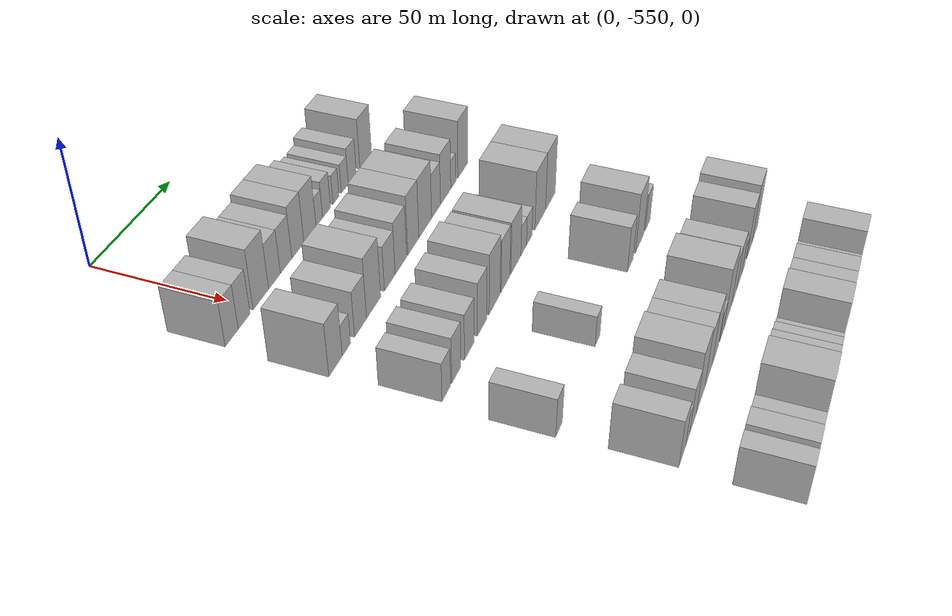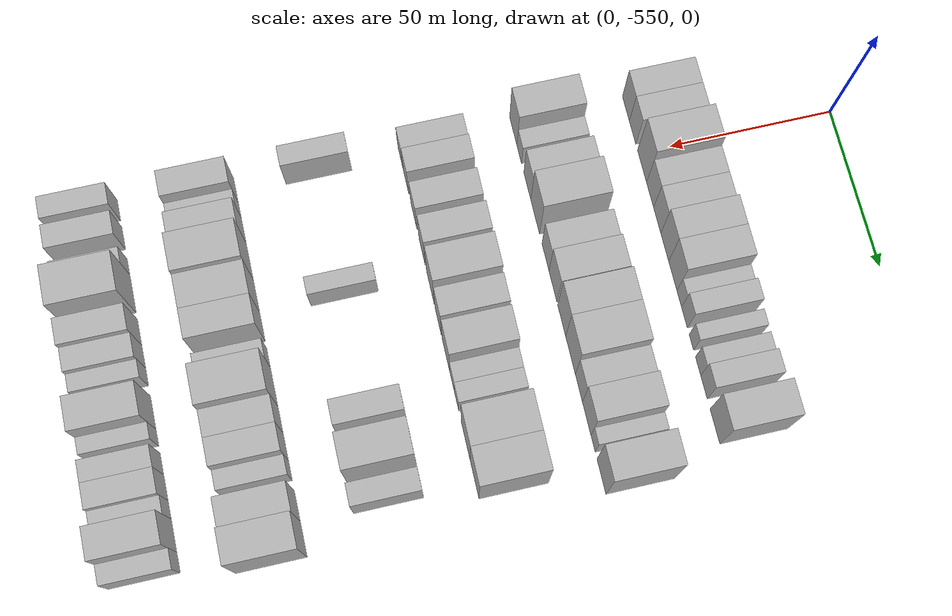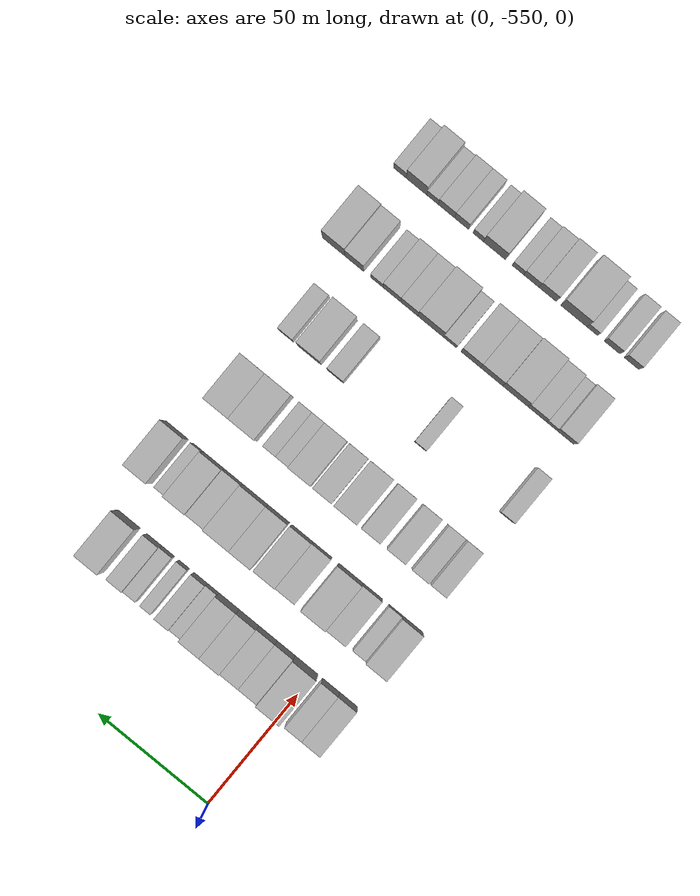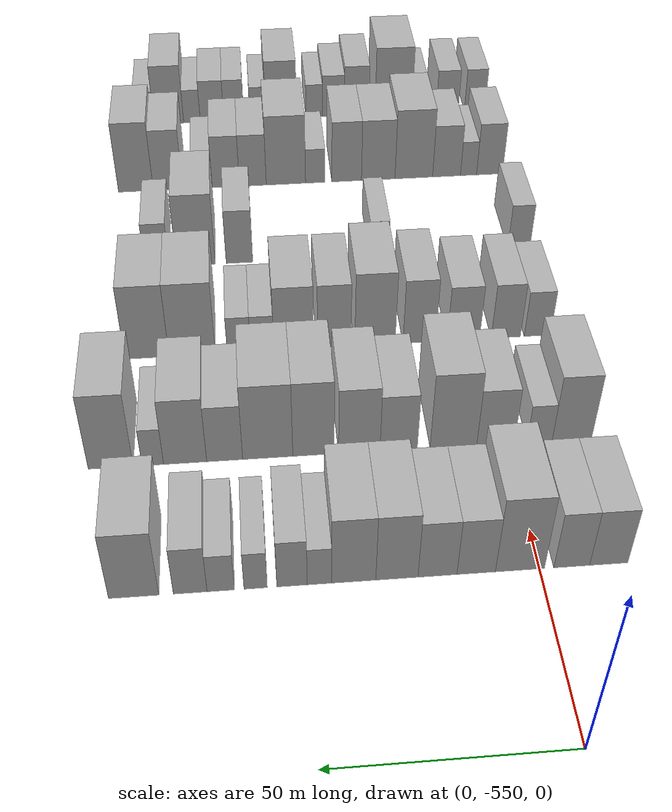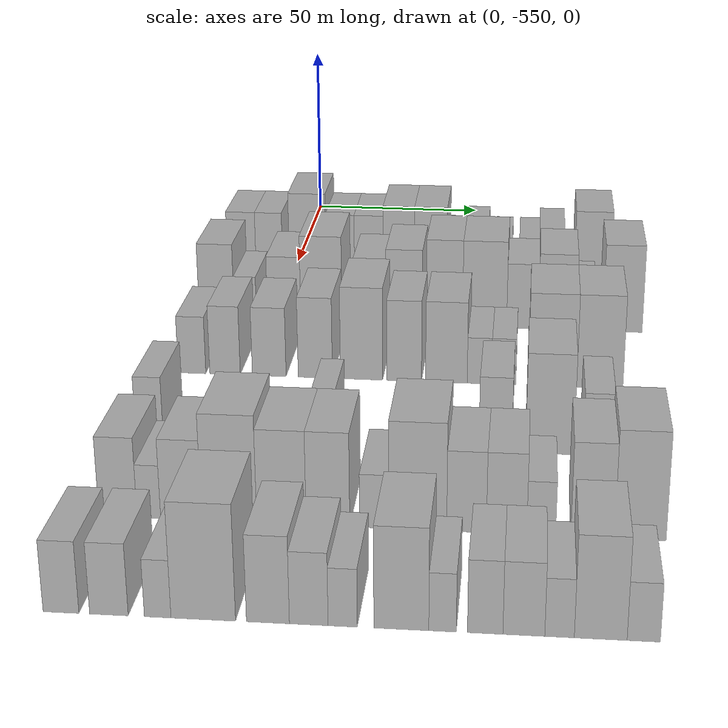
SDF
<sdf version="1.6">
 <world name="default">
  <model name="building_1">
   <static>1</static>
   <pose>50.0000 -564.8627 0 0.000000 0.000000 0.000000</pose>
   <link name="link">
    <pose>0 0 9.00 0 0 0</pose>
    <collision name="collision"><geometry><box><size>20.0000 8.2747 18.0000</size></box></geometry></collision>
    <visual name="visual">
     <cast_shadows>0</cast_shadows>
     <geometry><box><size>20.0000 8.2747 18.0000</size></box></geometry>
     <material>
      <script>
       <uri>model://HANNAS_wall/materials/scripts</uri>
       <uri>model://HANNAS_wall/materials/textures</uri>
       <name>vrc/HANNAS_wall</name>
      </script>
     </material>
    </visual>
   </link>
  </model>
  <model name="building_2">
   <static>1</static>
   <pose>50.0000 -556.8745 0 0.000000 0.000000 0.000000</pose>
   <link name="link">
    <pose>0 0 9.00 0 0 0</pose>
    <collision name="collision"><geometry><box><size>20.0000 7.7017 18.0000</size></box></geometry></collision>
    <visual name="visual">
     <cast_shadows>0</cast_shadows>
     <geometry><box><size>20.0000 7.7017 18.0000</size></box></geometry>
     <material>
      <script>
       <uri>model://HANNAS_wall/materials/scripts</uri>
       <uri>model://HANNAS_wall/materials/textures</uri>
       <name>vrc/HANNAS_wall</name>
      </script>
     </material>
    </visual>
   </link>
  </model>
  <model name="building_3">
   <static>1</static>
   <pose>50.0000 -545.7599 0 0.000000 0.000000 0.000000</pose>
   <link name="link">
    <pose>0 0 12.00 0 0 0</pose>
    <collision name="collision"><geometry><box><size>20.0000 10.5275 24.0000</size></box></geometry></collision>
    <visual name="visual">
     <cast_shadows>0</cast_shadows>
     <geometry><box><size>20.0000 10.5275 24.0000</size></box></geometry>
     <material>
      <script>
       <uri>model://HANNAS_wall/materials/scripts</uri>
       <uri>model://HANNAS_wall/materials/textures</uri>
       <name>vrc/HANNAS_wall</name>
      </script>
     </material>
    </visual>
   </link>
  </model>
  <model name="building_4">
   <static>1</static>
   <pose>50.0000 -536.3912 0 0.000000 0.000000 0.000000</pose>
   <link name="link">
    <pose>0 0 9.00 0 0 0</pose>
    <collision name="collision"><geometry><box><size>20.0000 8.2100 18.0000</size></box></geometry></collision>
    <visual name="visual">
     <cast_shadows>0</cast_shadows>
     <geometry><box><size>20.0000 8.2100 18.0000</size></box></geometry>
     <material>
      <script>
       <uri>model://HANNAS_wall/materials/scripts</uri>
       <uri>model://HANNAS_wall/materials/textures</uri>
       <name>vrc/HANNAS_wall</name>
      </script>
     </material>
    </visual>
   </link>
  </model>
  <model name="building_5">
   <static>1</static>
   <pose>50.0000 -528.1574 0 0.000000 0.000000 0.000000</pose>
   <link name="link">
    <pose>0 0 9.00 0 0 0</pose>
    <collision name="collision"><geometry><box><size>20.0000 8.2576 18.0000</size></box></geometry></collision>
    <visual name="visual">
     <cast_shadows>0</cast_shadows>
     <geometry><box><size>20.0000 8.2576 18.0000</size></box></geometry>
     <material>
      <script>
       <uri>model://HANNAS_wall/materials/scripts</uri>
       <uri>model://HANNAS_wall/materials/textures</uri>
       <name>vrc/HANNAS_wall</name>
      </script>
     </material>
    </visual>
   </link>
  </model>
  <model name="building_6">
   <static>1</static>
   <pose>50.0000 -519.5687 0 0.000000 0.000000 0.000000</pose>
   <link name="link">
    <pose>0 0 10.50 0 0 0</pose>
    <collision name="collision"><geometry><box><size>20.0000 8.9199 21.0000</size></box></geometry></collision>
    <visual name="visual">
     <cast_shadows>0</cast_shadows>
     <geometry><box><size>20.0000 8.9199 21.0000</size></box></geometry>
     <material>
      <script>
       <uri>model://HANNAS_wall/materials/scripts</uri>
       <uri>model://HANNAS_wall/materials/textures</uri>
       <name>vrc/HANNAS_wall</name>
      </script>
     </material>
    </visual>
   </link>
  </model>
  <model name="building_7">
   <static>1</static>
   <pose>50.0000 -510.4718 0 0.000000 0.000000 0.000000</pose>
   <link name="link">
    <pose>0 0 10.50 0 0 0</pose>
    <collision name="collision"><geometry><box><size>20.0000 9.2739 21.0000</size></box></geometry></collision>
    <visual name="visual">
     <cast_shadows>0</cast_shadows>
     <geometry><box><size>20.0000 9.2739 21.0000</size></box></geometry>
     <material>
      <script>
       <uri>model://HANNAS_wall/materials/scripts</uri>
       <uri>model://HANNAS_wall/materials/textures</uri>
       <name>vrc/HANNAS_wall</name>
      </script>
     </material>
    </visual>
   </link>
  </model>
  <model name="building_8">
   <static>1</static>
   <pose>50.0000 -503.2630 0 0.000000 0.000000 0.000000</pose>
   <link name="link">
    <pose>0 0 6.00 0 0 0</pose>
    <collision name="collision"><geometry><box><size>20.0000 5.1437 12.0000</size></box></geometry></collision>
    <visual name="visual">
     <cast_shadows>0</cast_shadows>
     <geometry><box><size>20.0000 5.1437 12.0000</size></box></geometry>
     <material>
      <script>
       <uri>model://HANNAS_wall/materials/scripts</uri>
       <uri>model://HANNAS_wall/materials/textures</uri>
       <name>vrc/HANNAS_wall</name>
      </script>
     </material>
    </visual>
   </link>
  </model>
  <model name="building_9">
   <static>1</static>
   <pose>50.0000 -497.5153 0 0.000000 0.000000 0.000000</pose>
   <link name="link">
    <pose>0 0 7.50 0 0 0</pose>
    <collision name="collision"><geometry><box><size>20.0000 6.3517 15.0000</size></box></geometry></collision>
    <visual name="visual">
     <cast_shadows>0</cast_shadows>
     <geometry><box><size>20.0000 6.3517 15.0000</size></box></geometry>
     <material>
      <script>
       <uri>model://HANNAS_wall/materials/scripts</uri>
       <uri>model://HANNAS_wall/materials/textures</uri>
       <name>vrc/HANNAS_wall</name>
      </script>
     </material>
    </visual>
   </link>
  </model>
  <model name="building_10">
   <static>1</static>
   <pose>50.0000 -489.9165 0 0.000000 0.000000 0.000000</pose>
   <link name="link">
    <pose>0 0 6.00 0 0 0</pose>
    <collision name="collision"><geometry><box><size>20.0000 4.8460 12.0000</size></box></geometry></collision>
    <visual name="visual">
     <cast_shadows>0</cast_shadows>
     <geometry><box><size>20.0000 4.8460 12.0000</size></box></geometry>
     <material>
      <script>
       <uri>model://HANNAS_wall/materials/scripts</uri>
       <uri>model://HANNAS_wall/materials/textures</uri>
       <name>vrc/HANNAS_wall</name>
      </script>
     </material>
    </visual>
   </link>
  </model>
  <model name="building_11">
   <static>1</static>
   <pose>50.0000 -482.6522 0 0.000000 0.000000 0.000000</pose>
   <link name="link">
    <pose>0 0 6.00 0 0 0</pose>
    <collision name="collision"><geometry><box><size>20.0000 5.6825 12.0000</size></box></geometry></collision>
    <visual name="visual">
     <cast_shadows>0</cast_shadows>
     <geometry><box><size>20.0000 5.6825 12.0000</size></box></geometry>
     <material>
      <script>
       <uri>model://HANNAS_wall/materials/scripts</uri>
       <uri>model://HANNAS_wall/materials/textures</uri>
       <name>vrc/HANNAS_wall</name>
      </script>
     </material>
    </visual>
   </link>
  </model>
  <model name="building_12">
   <static>1</static>
   <pose>50.0000 -476.3167 0 0.000000 0.000000 0.000000</pose>
   <link name="link">
    <pose>0 0 7.50 0 0 0</pose>
    <collision name="collision"><geometry><box><size>20.0000 6.9886 15.0000</size></box></geometry></collision>
    <visual name="visual">
     <cast_shadows>0</cast_shadows>
     <geometry><box><size>20.0000 6.9886 15.0000</size></box></geometry>
     <material>
      <script>
       <uri>model://HANNAS_wall/materials/scripts</uri>
       <uri>model://HANNAS_wall/materials/textures</uri>
       <name>vrc/HANNAS_wall</name>
      </script>
     </material>
    </visual>
   </link>
  </model>
  <model name="building_13">
   <static>1</static>
   <pose>50.0000 -464.6438 0 0.000000 0.000000 0.000000</pose>
   <link name="link">
    <pose>0 0 10.50 0 0 0</pose>
    <collision name="collision"><geometry><box><size>20.0000 10.3572 21.0000</size></box></geometry></collision>
    <visual name="visual">
     <cast_shadows>0</cast_shadows>
     <geometry><box><size>20.0000 10.3572 21.0000</size></box></geometry>
     <material>
      <script>
       <uri>model://HANNAS_wall/materials/scripts</uri>
       <uri>model://HANNAS_wall/materials/textures</uri>
       <name>vrc/HANNAS_wall</name>
      </script>
     </material>
    </visual>
   </link>
  </model>
  <model name="building_127">
   <static>1</static>
   <pose>85.0000 -565.2826 0 0.000000 0.000000 0.000000</pose>
   <link name="link">
    <pose>0 0 10.50 0 0 0</pose>
    <collision name="collision"><geometry><box><size>20.0000 9.4348 21.0000</size></box></geometry></collision>
    <visual name="visual">
     <cast_shadows>0</cast_shadows>
     <geometry><box><size>20.0000 9.4348 21.0000</size></box></geometry>
     <material>
      <script>
       <uri>model://HANNAS_wall/materials/scripts</uri>
       <uri>model://HANNAS_wall/materials/textures</uri>
       <name>vrc/HANNAS_wall</name>
      </script>
     </material>
    </visual>
   </link>
  </model>
  <model name="building_128">
   <static>1</static>
   <pose>85.0000 -557.5827 0 0.000000 0.000000 0.000000</pose>
   <link name="link">
    <pose>0 0 6.00 0 0 0</pose>
    <collision name="collision"><geometry><box><size>20.0000 5.9650 12.0000</size></box></geometry></collision>
    <visual name="visual">
     <cast_shadows>0</cast_shadows>
     <geometry><box><size>20.0000 5.9650 12.0000</size></box></geometry>
     <material>
      <script>
       <uri>model://HANNAS_wall/materials/scripts</uri>
       <uri>model://HANNAS_wall/materials/textures</uri>
       <name>vrc/HANNAS_wall</name>
      </script>
     </material>
    </visual>
   </link>
  </model>
  <model name="building_129">
   <static>1</static>
   <pose>85.0000 -547.1447 0 0.000000 0.000000 0.000000</pose>
   <link name="link">
    <pose>0 0 9.00 0 0 0</pose>
    <collision name="collision"><geometry><box><size>20.0000 8.9110 18.0000</size></box></geometry></collision>
    <visual name="visual">
     <cast_shadows>0</cast_shadows>
     <geometry><box><size>20.0000 8.9110 18.0000</size></box></geometry>
     <material>
      <script>
       <uri>model://HANNAS_wall/materials/scripts</uri>
       <uri>model://HANNAS_wall/materials/textures</uri>
       <name>vrc/HANNAS_wall</name>
      </script>
     </material>
    </visual>
   </link>
  </model>
  <model name="building_130">
   <static>1</static>
   <pose>85.0000 -537.1937 0 0.000000 0.000000 0.000000</pose>
   <link name="link">
    <pose>0 0 12.00 0 0 0</pose>
    <collision name="collision"><geometry><box><size>20.0000 10.9910 24.0000</size></box></geometry></collision>
    <visual name="visual">
     <cast_shadows>0</cast_shadows>
     <geometry><box><size>20.0000 10.9910 24.0000</size></box></geometry>
     <material>
      <script>
       <uri>model://HANNAS_wall/materials/scripts</uri>
       <uri>model://HANNAS_wall/materials/textures</uri>
       <name>vrc/HANNAS_wall</name>
      </script>
     </material>
    </visual>
   </link>
  </model>
  <model name="building_131">
   <static>1</static>
   <pose>85.0000 -524.3386 0 0.000000 0.000000 0.000000</pose>
   <link name="link">
    <pose>0 0 9.00 0 0 0</pose>
    <collision name="collision"><geometry><box><size>20.0000 8.7191 18.0000</size></box></geometry></collision>
    <visual name="visual">
     <cast_shadows>0</cast_shadows>
     <geometry><box><size>20.0000 8.7191 18.0000</size></box></geometry>
     <material>
      <script>
       <uri>model://HANNAS_wall/materials/scripts</uri>
       <uri>model://HANNAS_wall/materials/textures</uri>
       <name>vrc/HANNAS_wall</name>
      </script>
     </material>
    </visual>
   </link>
  </model>
  <model name="building_132">
   <static>1</static>
   <pose>85.0000 -515.1495 0 0.000000 0.000000 0.000000</pose>
   <link name="link">
    <pose>0 0 10.50 0 0 0</pose>
    <collision name="collision"><geometry><box><size>20.0000 9.6592 21.0000</size></box></geometry></collision>
    <visual name="visual">
     <cast_shadows>0</cast_shadows>
     <geometry><box><size>20.0000 9.6592 21.0000</size></box></geometry>
     <material>
      <script>
       <uri>model://HANNAS_wall/materials/scripts</uri>
       <uri>model://HANNAS_wall/materials/textures</uri>
       <name>vrc/HANNAS_wall</name>
      </script>
     </material>
    </visual>
   </link>
  </model>
  <model name="building_133">
   <static>1</static>
   <pose>85.0000 -504.5150 0 0.000000 0.000000 0.000000</pose>
   <link name="link">
    <pose>0 0 12.00 0 0 0</pose>
    <collision name="collision"><geometry><box><size>20.0000 9.6099 24.0000</size></box></geometry></collision>
    <visual name="visual">
     <cast_shadows>0</cast_shadows>
     <geometry><box><size>20.0000 9.6099 24.0000</size></box></geometry>
     <material>
      <script>
       <uri>model://HANNAS_wall/materials/scripts</uri>
       <uri>model://HANNAS_wall/materials/textures</uri>
       <name>vrc/HANNAS_wall</name>
      </script>
     </material>
    </visual>
   </link>
  </model>
  <model name="building_134">
   <static>1</static>
   <pose>85.0000 -493.9268 0 0.000000 0.000000 0.000000</pose>
   <link name="link">
    <pose>0 0 12.00 0 0 0</pose>
    <collision name="collision"><geometry><box><size>20.0000 11.5665 24.0000</size></box></geometry></collision>
    <visual name="visual">
     <cast_shadows>0</cast_shadows>
     <geometry><box><size>20.0000 11.5665 24.0000</size></box></geometry>
     <material>
      <script>
       <uri>model://HANNAS_wall/materials/scripts</uri>
       <uri>model://HANNAS_wall/materials/textures</uri>
       <name>vrc/HANNAS_wall</name>
      </script>
     </material>
    </visual>
   </link>
  </model>
  <model name="building_135">
   <static>1</static>
   <pose>85.0000 -484.0067 0 0.000000 0.000000 0.000000</pose>
   <link name="link">
    <pose>0 0 9.00 0 0 0</pose>
    <collision name="collision"><geometry><box><size>20.0000 8.2737 18.0000</size></box></geometry></collision>
    <visual name="visual">
     <cast_shadows>0</cast_shadows>
     <geometry><box><size>20.0000 8.2737 18.0000</size></box></geometry>
     <material>
      <script>
       <uri>model://HANNAS_wall/materials/scripts</uri>
       <uri>model://HANNAS_wall/materials/textures</uri>
       <name>vrc/HANNAS_wall</name>
      </script>
     </material>
    </visual>
   </link>
  </model>
  <model name="building_136">
   <static>1</static>
   <pose>85.0000 -474.9293 0 0.000000 0.000000 0.000000</pose>
   <link name="link">
    <pose>0 0 10.50 0 0 0</pose>
    <collision name="collision"><geometry><box><size>20.0000 9.8811 21.0000</size></box></geometry></collision>
    <visual name="visual">
     <cast_shadows>0</cast_shadows>
     <geometry><box><size>20.0000 9.8811 21.0000</size></box></geometry>
     <material>
      <script>
       <uri>model://HANNAS_wall/materials/scripts</uri>
       <uri>model://HANNAS_wall/materials/textures</uri>
       <name>vrc/HANNAS_wall</name>
      </script>
     </material>
    </visual>
   </link>
  </model>
  <model name="building_137">
   <static>1</static>
   <pose>85.0000 -467.5268 0 0.000000 0.000000 0.000000</pose>
   <link name="link">
    <pose>0 0 6.00 0 0 0</pose>
    <collision name="collision"><geometry><box><size>20.0000 4.9239 12.0000</size></box></geometry></collision>
    <visual name="visual">
     <cast_shadows>0</cast_shadows>
     <geometry><box><size>20.0000 4.9239 12.0000</size></box></geometry>
     <material>
      <script>
       <uri>model://HANNAS_wall/materials/scripts</uri>
       <uri>model://HANNAS_wall/materials/textures</uri>
       <name>vrc/HANNAS_wall</name>
      </script>
     </material>
    </visual>
   </link>
  </model>
  <model name="building_138">
   <static>1</static>
   <pose>85.0000 -457.9558 0 0.000000 0.000000 0.000000</pose>
   <link name="link">
    <pose>0 0 12.00 0 0 0</pose>
    <collision name="collision"><geometry><box><size>20.0000 10.2180 24.0000</size></box></geometry></collision>
    <visual name="visual">
     <cast_shadows>0</cast_shadows>
     <geometry><box><size>20.0000 10.2180 24.0000</size></box></geometry>
     <material>
      <script>
       <uri>model://HANNAS_wall/materials/scripts</uri>
       <uri>model://HANNAS_wall/materials/textures</uri>
       <name>vrc/HANNAS_wall</name>
      </script>
     </material>
    </visual>
   </link>
  </model>
  <model name="building_257">
   <static>1</static>
   <pose>120.0000 -564.5713 0 0.000000 0.000000 0.000000</pose>
   <link name="link">
    <pose>0 0 7.50 0 0 0</pose>
    <collision name="collision"><geometry><box><size>20.0000 6.8574 15.0000</size></box></geometry></collision>
    <visual name="visual">
     <cast_shadows>0</cast_shadows>
     <geometry><box><size>20.0000 6.8574 15.0000</size></box></geometry>
     <material>
      <script>
       <uri>model://HANNAS_wall/materials/scripts</uri>
       <uri>model://HANNAS_wall/materials/textures</uri>
       <name>vrc/HANNAS_wall</name>
      </script>
     </material>
    </visual>
   </link>
  </model>
  <model name="building_258">
   <static>1</static>
   <pose>120.0000 -556.3617 0 0.000000 0.000000 0.000000</pose>
   <link name="link">
    <pose>0 0 9.00 0 0 0</pose>
    <collision name="collision"><geometry><box><size>20.0000 7.5617 18.0000</size></box></geometry></collision>
    <visual name="visual">
     <cast_shadows>0</cast_shadows>
     <geometry><box><size>20.0000 7.5617 18.0000</size></box></geometry>
     <material>
      <script>
       <uri>model://HANNAS_wall/materials/scripts</uri>
       <uri>model://HANNAS_wall/materials/textures</uri>
       <name>vrc/HANNAS_wall</name>
      </script>
     </material>
    </visual>
   </link>
  </model>
  <model name="building_259">
   <static>1</static>
   <pose>120.0000 -545.4109 0 0.000000 0.000000 0.000000</pose>
   <link name="link">
    <pose>0 0 9.00 0 0 0</pose>
    <collision name="collision"><geometry><box><size>20.0000 8.3399 18.0000</size></box></geometry></collision>
    <visual name="visual">
     <cast_shadows>0</cast_shadows>
     <geometry><box><size>20.0000 8.3399 18.0000</size></box></geometry>
     <material>
      <script>
       <uri>model://HANNAS_wall/materials/scripts</uri>
       <uri>model://HANNAS_wall/materials/textures</uri>
       <name>vrc/HANNAS_wall</name>
      </script>
     </material>
    </visual>
   </link>
  </model>
  <model name="building_260">
   <static>1</static>
   <pose>120.0000 -534.0376 0 0.000000 0.000000 0.000000</pose>
   <link name="link">
    <pose>0 0 10.50 0 0 0</pose>
    <collision name="collision"><geometry><box><size>20.0000 8.4066 21.0000</size></box></geometry></collision>
    <visual name="visual">
     <cast_shadows>0</cast_shadows>
     <geometry><box><size>20.0000 8.4066 21.0000</size></box></geometry>
     <material>
      <script>
       <uri>model://HANNAS_wall/materials/scripts</uri>
       <uri>model://HANNAS_wall/materials/textures</uri>
       <name>vrc/HANNAS_wall</name>
      </script>
     </material>
    </visual>
   </link>
  </model>
  <model name="building_261">
   <static>1</static>
   <pose>120.0000 -522.6696 0 0.000000 0.000000 0.000000</pose>
   <link name="link">
    <pose>0 0 12.00 0 0 0</pose>
    <collision name="collision"><geometry><box><size>20.0000 10.3294 24.0000</size></box></geometry></collision>
    <visual name="visual">
     <cast_shadows>0</cast_shadows>
     <geometry><box><size>20.0000 10.3294 24.0000</size></box></geometry>
     <material>
      <script>
       <uri>model://HANNAS_wall/materials/scripts</uri>
       <uri>model://HANNAS_wall/materials/textures</uri>
       <name>vrc/HANNAS_wall</name>
      </script>
     </material>
    </visual>
   </link>
  </model>
  <model name="building_262">
   <static>1</static>
   <pose>120.0000 -512.2669 0 0.000000 0.000000 0.000000</pose>
   <link name="link">
    <pose>0 0 10.50 0 0 0</pose>
    <collision name="collision"><geometry><box><size>20.0000 8.4762 21.0000</size></box></geometry></collision>
    <visual name="visual">
     <cast_shadows>0</cast_shadows>
     <geometry><box><size>20.0000 8.4762 21.0000</size></box></geometry>
     <material>
      <script>
       <uri>model://HANNAS_wall/materials/scripts</uri>
       <uri>model://HANNAS_wall/materials/textures</uri>
       <name>vrc/HANNAS_wall</name>
      </script>
     </material>
    </visual>
   </link>
  </model>
  <model name="building_263">
   <static>1</static>
   <pose>120.0000 -501.9788 0 0.000000 0.000000 0.000000</pose>
   <link name="link">
    <pose>0 0 10.50 0 0 0</pose>
    <collision name="collision"><geometry><box><size>20.0000 10.1000 21.0000</size></box></geometry></collision>
    <visual name="visual">
     <cast_shadows>0</cast_shadows>
     <geometry><box><size>20.0000 10.1000 21.0000</size></box></geometry>
     <material>
      <script>
       <uri>model://HANNAS_wall/materials/scripts</uri>
       <uri>model://HANNAS_wall/materials/textures</uri>
       <name>vrc/HANNAS_wall</name>
      </script>
     </material>
    </visual>
   </link>
  </model>
  <model name="building_264">
   <static>1</static>
   <pose>120.0000 -493.9798 0 0.000000 0.000000 0.000000</pose>
   <link name="link">
    <pose>0 0 6.00 0 0 0</pose>
    <collision name="collision"><geometry><box><size>20.0000 5.8979 12.0000</size></box></geometry></collision>
    <visual name="visual">
     <cast_shadows>0</cast_shadows>
     <geometry><box><size>20.0000 5.8979 12.0000</size></box></geometry>
     <material>
      <script>
       <uri>model://HANNAS_wall/materials/scripts</uri>
       <uri>model://HANNAS_wall/materials/textures</uri>
       <name>vrc/HANNAS_wall</name>
      </script>
     </material>
    </visual>
   </link>
  </model>
  <model name="building_265">
   <static>1</static>
   <pose>120.0000 -488.1060 0 0.000000 0.000000 0.000000</pose>
   <link name="link">
    <pose>0 0 6.00 0 0 0</pose>
    <collision name="collision"><geometry><box><size>20.0000 5.8498 12.0000</size></box></geometry></collision>
    <visual name="visual">
     <cast_shadows>0</cast_shadows>
     <geometry><box><size>20.0000 5.8498 12.0000</size></box></geometry>
     <material>
      <script>
       <uri>model://HANNAS_wall/materials/scripts</uri>
       <uri>model://HANNAS_wall/materials/textures</uri>
       <name>vrc/HANNAS_wall</name>
      </script>
     </material>
    </visual>
   </link>
  </model>
  <model name="building_266">
   <static>1</static>
   <pose>120.0000 -476.3576 0 0.000000 0.000000 0.000000</pose>
   <link name="link">
    <pose>0 0 12.00 0 0 0</pose>
    <collision name="collision"><geometry><box><size>20.0000 11.6470 24.0000</size></box></geometry></collision>
    <visual name="visual">
     <cast_shadows>0</cast_shadows>
     <geometry><box><size>20.0000 11.6470 24.0000</size></box></geometry>
     <material>
      <script>
       <uri>model://HANNAS_wall/materials/scripts</uri>
       <uri>model://HANNAS_wall/materials/textures</uri>
       <name>vrc/HANNAS_wall</name>
      </script>
     </material>
    </visual>
   </link>
  </model>
  <model name="building_267">
   <static>1</static>
   <pose>120.0000 -465.0137 0 0.000000 0.000000 0.000000</pose>
   <link name="link">
    <pose>0 0 12.00 0 0 0</pose>
    <collision name="collision"><geometry><box><size>20.0000 11.0408 24.0000</size></box></geometry></collision>
    <visual name="visual">
     <cast_shadows>0</cast_shadows>
     <geometry><box><size>20.0000 11.0408 24.0000</size></box></geometry>
     <material>
      <script>
       <uri>model://HANNAS_wall/materials/scripts</uri>
       <uri>model://HANNAS_wall/materials/textures</uri>
       <name>vrc/HANNAS_wall</name>
      </script>
     </material>
    </visual>
   </link>
  </model>
  <model name="building_376">
   <static>1</static>
   <pose>155.0000 -566.8620 0 0.000000 0.000000 0.000000</pose>
   <link name="link">
    <pose>0 0 7.50 0 0 0</pose>
    <collision name="collision"><geometry><box><size>20.0000 6.2759 15.0000</size></box></geometry></collision>
    <visual name="visual">
     <cast_shadows>0</cast_shadows>
     <geometry><box><size>20.0000 6.2759 15.0000</size></box></geometry>
     <material>
      <script>
       <uri>model://HANNAS_wall/materials/scripts</uri>
       <uri>model://HANNAS_wall/materials/textures</uri>
       <name>vrc/HANNAS_wall</name>
      </script>
     </material>
    </visual>
   </link>
  </model>
  <model name="building_377">
   <static>1</static>
   <pose>155.0000 -527.7102 0 0.000000 0.000000 0.000000</pose>
   <link name="link">
    <pose>0 0 6.00 0 0 0</pose>
    <collision name="collision"><geometry><box><size>20.0000 5.3426 12.0000</size></box></geometry></collision>
    <visual name="visual">
     <cast_shadows>0</cast_shadows>
     <geometry><box><size>20.0000 5.3426 12.0000</size></box></geometry>
     <material>
      <script>
       <uri>model://HANNAS_wall/materials/scripts</uri>
       <uri>model://HANNAS_wall/materials/textures</uri>
       <name>vrc/HANNAS_wall</name>
      </script>
     </material>
    </visual>
   </link>
  </model>
  <model name="building_378">
   <static>1</static>
   <pose>155.0000 -489.1320 0 0.000000 0.000000 0.000000</pose>
   <link name="link">
    <pose>0 0 9.00 0 0 0</pose>
    <collision name="collision"><geometry><box><size>20.0000 7.2713 18.0000</size></box></geometry></collision>
    <visual name="visual">
     <cast_shadows>0</cast_shadows>
     <geometry><box><size>20.0000 7.2713 18.0000</size></box></geometry>
     <material>
      <script>
       <uri>model://HANNAS_wall/materials/scripts</uri>
       <uri>model://HANNAS_wall/materials/textures</uri>
       <name>vrc/HANNAS_wall</name>
      </script>
     </material>
    </visual>
   </link>
  </model>
  <model name="building_379">
   <static>1</static>
   <pose>155.0000 -477.1920 0 0.000000 0.000000 0.000000</pose>
   <link name="link">
    <pose>0 0 12.00 0 0 0</pose>
    <collision name="collision"><geometry><box><size>20.0000 10.6087 24.0000</size></box></geometry></collision>
    <visual name="visual">
     <cast_shadows>0</cast_shadows>
     <geometry><box><size>20.0000 10.6087 24.0000</size></box></geometry>
     <material>
      <script>
       <uri>model://HANNAS_wall/materials/scripts</uri>
       <uri>model://HANNAS_wall/materials/textures</uri>
       <name>vrc/HANNAS_wall</name>
      </script>
     </material>
    </visual>
   </link>
  </model>
  <model name="building_380">
   <static>1</static>
   <pose>155.0000 -466.5730 0 0.000000 0.000000 0.000000</pose>
   <link name="link">
    <pose>0 0 7.50 0 0 0</pose>
    <collision name="collision"><geometry><box><size>20.0000 6.6293 15.0000</size></box></geometry></collision>
    <visual name="visual">
     <cast_shadows>0</cast_shadows>
     <geometry><box><size>20.0000 6.6293 15.0000</size></box></geometry>
     <material>
      <script>
       <uri>model://HANNAS_wall/materials/scripts</uri>
       <uri>model://HANNAS_wall/materials/textures</uri>
       <name>vrc/HANNAS_wall</name>
      </script>
     </material>
    </visual>
   </link>
  </model>
  <model name="building_496">
   <static>1</static>
   <pose>190.0000 -565.0449 0 0.000000 0.000000 0.000000</pose>
   <link name="link">
    <pose>0 0 9.00 0 0 0</pose>
    <collision name="collision"><geometry><box><size>20.0000 7.9103 18.0000</size></box></geometry></collision>
    <visual name="visual">
     <cast_shadows>0</cast_shadows>
     <geometry><box><size>20.0000 7.9103 18.0000</size></box></geometry>
     <material>
      <script>
       <uri>model://HANNAS_wall/materials/scripts</uri>
       <uri>model://HANNAS_wall/materials/textures</uri>
       <name>vrc/HANNAS_wall</name>
      </script>
     </material>
    </visual>
   </link>
  </model>
  <model name="building_497">
   <static>1</static>
   <pose>190.0000 -558.6490 0 0.000000 0.000000 0.000000</pose>
   <link name="link">
    <pose>0 0 6.00 0 0 0</pose>
    <collision name="collision"><geometry><box><size>20.0000 4.8814 12.0000</size></box></geometry></collision>
    <visual name="visual">
     <cast_shadows>0</cast_shadows>
     <geometry><box><size>20.0000 4.8814 12.0000</size></box></geometry>
     <material>
      <script>
       <uri>model://HANNAS_wall/materials/scripts</uri>
       <uri>model://HANNAS_wall/materials/textures</uri>
       <name>vrc/HANNAS_wall</name>
      </script>
     </material>
    </visual>
   </link>
  </model>
  <model name="building_498">
   <static>1</static>
   <pose>190.0000 -551.9929 0 0.000000 0.000000 0.000000</pose>
   <link name="link">
    <pose>0 0 9.00 0 0 0</pose>
    <collision name="collision"><geometry><box><size>20.0000 8.4307 18.0000</size></box></geometry></collision>
    <visual name="visual">
     <cast_shadows>0</cast_shadows>
     <geometry><box><size>20.0000 8.4307 18.0000</size></box></geometry>
     <material>
      <script>
       <uri>model://HANNAS_wall/materials/scripts</uri>
       <uri>model://HANNAS_wall/materials/textures</uri>
       <name>vrc/HANNAS_wall</name>
      </script>
     </material>
    </visual>
   </link>
  </model>
  <model name="building_499">
   <static>1</static>
   <pose>190.0000 -542.0966 0 0.000000 0.000000 0.000000</pose>
   <link name="link">
    <pose>0 0 12.00 0 0 0</pose>
    <collision name="collision"><geometry><box><size>20.0000 11.3618 24.0000</size></box></geometry></collision>
    <visual name="visual">
     <cast_shadows>0</cast_shadows>
     <geometry><box><size>20.0000 11.3618 24.0000</size></box></geometry>
     <material>
      <script>
       <uri>model://HANNAS_wall/materials/scripts</uri>
       <uri>model://HANNAS_wall/materials/textures</uri>
       <name>vrc/HANNAS_wall</name>
      </script>
     </material>
    </visual>
   </link>
  </model>
  <model name="building_500">
   <static>1</static>
   <pose>190.0000 -531.3754 0 0.000000 0.000000 0.000000</pose>
   <link name="link">
    <pose>0 0 10.50 0 0 0</pose>
    <collision name="collision"><geometry><box><size>20.0000 10.0806 21.0000</size></box></geometry></collision>
    <visual name="visual">
     <cast_shadows>0</cast_shadows>
     <geometry><box><size>20.0000 10.0806 21.0000</size></box></geometry>
     <material>
      <script>
       <uri>model://HANNAS_wall/materials/scripts</uri>
       <uri>model://HANNAS_wall/materials/textures</uri>
       <name>vrc/HANNAS_wall</name>
      </script>
     </material>
    </visual>
   </link>
  </model>
  <model name="building_501">
   <static>1</static>
   <pose>190.0000 -521.9044 0 0.000000 0.000000 0.000000</pose>
   <link name="link">
    <pose>0 0 10.50 0 0 0</pose>
    <collision name="collision"><geometry><box><size>20.0000 8.8614 21.0000</size></box></geometry></collision>
    <visual name="visual">
     <cast_shadows>0</cast_shadows>
     <geometry><box><size>20.0000 8.8614 21.0000</size></box></geometry>
     <material>
      <script>
       <uri>model://HANNAS_wall/materials/scripts</uri>
       <uri>model://HANNAS_wall/materials/textures</uri>
       <name>vrc/HANNAS_wall</name>
      </script>
     </material>
    </visual>
   </link>
  </model>
  <model name="building_502">
   <static>1</static>
   <pose>190.0000 -512.5364 0 0.000000 0.000000 0.000000</pose>
   <link name="link">
    <pose>0 0 6.00 0 0 0</pose>
    <collision name="collision"><geometry><box><size>20.0000 5.8746 12.0000</size></box></geometry></collision>
    <visual name="visual">
     <cast_shadows>0</cast_shadows>
     <geometry><box><size>20.0000 5.8746 12.0000</size></box></geometry>
     <material>
      <script>
       <uri>model://HANNAS_wall/materials/scripts</uri>
       <uri>model://HANNAS_wall/materials/textures</uri>
       <name>vrc/HANNAS_wall</name>
      </script>
     </material>
    </visual>
   </link>
  </model>
  <model name="building_503">
   <static>1</static>
   <pose>190.0000 -503.7549 0 0.000000 0.000000 0.000000</pose>
   <link name="link">
    <pose>0 0 12.00 0 0 0</pose>
    <collision name="collision"><geometry><box><size>20.0000 11.6884 24.0000</size></box></geometry></collision>
    <visual name="visual">
     <cast_shadows>0</cast_shadows>
     <geometry><box><size>20.0000 11.6884 24.0000</size></box></geometry>
     <material>
      <script>
       <uri>model://HANNAS_wall/materials/scripts</uri>
       <uri>model://HANNAS_wall/materials/textures</uri>
       <name>vrc/HANNAS_wall</name>
      </script>
     </material>
    </visual>
   </link>
  </model>
  <model name="building_504">
   <static>1</static>
   <pose>190.0000 -493.9383 0 0.000000 0.000000 0.000000</pose>
   <link name="link">
    <pose>0 0 9.00 0 0 0</pose>
    <collision name="collision"><geometry><box><size>20.0000 7.9448 18.0000</size></box></geometry></collision>
    <visual name="visual">
     <cast_shadows>0</cast_shadows>
     <geometry><box><size>20.0000 7.9448 18.0000</size></box></geometry>
     <material>
      <script>
       <uri>model://HANNAS_wall/materials/scripts</uri>
       <uri>model://HANNAS_wall/materials/textures</uri>
       <name>vrc/HANNAS_wall</name>
      </script>
     </material>
    </visual>
   </link>
  </model>
  <model name="building_505">
   <static>1</static>
   <pose>190.0000 -485.9334 0 0.000000 0.000000 0.000000</pose>
   <link name="link">
    <pose>0 0 9.00 0 0 0</pose>
    <collision name="collision"><geometry><box><size>20.0000 8.0650 18.0000</size></box></geometry></collision>
    <visual name="visual">
     <cast_shadows>0</cast_shadows>
     <geometry><box><size>20.0000 8.0650 18.0000</size></box></geometry>
     <material>
      <script>
       <uri>model://HANNAS_wall/materials/scripts</uri>
       <uri>model://HANNAS_wall/materials/textures</uri>
       <name>vrc/HANNAS_wall</name>
      </script>
     </material>
    </visual>
   </link>
  </model>
  <model name="building_506">
   <static>1</static>
   <pose>190.0000 -479.0269 0 0.000000 0.000000 0.000000</pose>
   <link name="link">
    <pose>0 0 6.00 0 0 0</pose>
    <collision name="collision"><geometry><box><size>20.0000 5.7479 12.0000</size></box></geometry></collision>
    <visual name="visual">
     <cast_shadows>0</cast_shadows>
     <geometry><box><size>20.0000 5.7479 12.0000</size></box></geometry>
     <material>
      <script>
       <uri>model://HANNAS_wall/materials/scripts</uri>
       <uri>model://HANNAS_wall/materials/textures</uri>
       <name>vrc/HANNAS_wall</name>
      </script>
     </material>
    </visual>
   </link>
  </model>
  <model name="building_507">
   <static>1</static>
   <pose>190.0000 -468.8341 0 0.000000 0.000000 0.000000</pose>
   <link name="link">
    <pose>0 0 10.50 0 0 0</pose>
    <collision name="collision"><geometry><box><size>20.0000 8.6378 21.0000</size></box></geometry></collision>
    <visual name="visual">
     <cast_shadows>0</cast_shadows>
     <geometry><box><size>20.0000 8.6378 21.0000</size></box></geometry>
     <material>
      <script>
       <uri>model://HANNAS_wall/materials/scripts</uri>
       <uri>model://HANNAS_wall/materials/textures</uri>
       <name>vrc/HANNAS_wall</name>
      </script>
     </material>
    </visual>
   </link>
  </model>
  <model name="building_508">
   <static>1</static>
   <pose>190.0000 -459.4258 0 0.000000 0.000000 0.000000</pose>
   <link name="link">
    <pose>0 0 12.00 0 0 0</pose>
    <collision name="collision"><geometry><box><size>20.0000 10.1788 24.0000</size></box></geometry></collision>
    <visual name="visual">
     <cast_shadows>0</cast_shadows>
     <geometry><box><size>20.0000 10.1788 24.0000</size></box></geometry>
     <material>
      <script>
       <uri>model://HANNAS_wall/materials/scripts</uri>
       <uri>model://HANNAS_wall/materials/textures</uri>
       <name>vrc/HANNAS_wall</name>
      </script>
     </material>
    </visual>
   </link>
  </model>
  <model name="building_618">
   <static>1</static>
   <pose>225.0000 -566.6494 0 0.000000 0.000000 0.000000</pose>
   <link name="link">
    <pose>0 0 7.50 0 0 0</pose>
    <collision name="collision"><geometry><box><size>20.0000 6.7012 15.0000</size></box></geometry></collision>
    <visual name="visual">
     <cast_shadows>0</cast_shadows>
     <geometry><box><size>20.0000 6.7012 15.0000</size></box></geometry>
     <material>
      <script>
       <uri>model://HANNAS_wall/materials/scripts</uri>
       <uri>model://HANNAS_wall/materials/textures</uri>
       <name>vrc/HANNAS_wall</name>
      </script>
     </material>
    </visual>
   </link>
  </model>
  <model name="building_619">
   <static>1</static>
   <pose>225.0000 -557.7084 0 0.000000 0.000000 0.000000</pose>
   <link name="link">
    <pose>0 0 7.50 0 0 0</pose>
    <collision name="collision"><geometry><box><size>20.0000 7.1808 15.0000</size></box></geometry></collision>
    <visual name="visual">
     <cast_shadows>0</cast_shadows>
     <geometry><box><size>20.0000 7.1808 15.0000</size></box></geometry>
     <material>
      <script>
       <uri>model://HANNAS_wall/materials/scripts</uri>
       <uri>model://HANNAS_wall/materials/textures</uri>
       <name>vrc/HANNAS_wall</name>
      </script>
     </material>
    </visual>
   </link>
  </model>
  <model name="building_620">
   <static>1</static>
   <pose>225.0000 -548.6519 0 0.000000 0.000000 0.000000</pose>
   <link name="link">
    <pose>0 0 6.00 0 0 0</pose>
    <collision name="collision"><geometry><box><size>20.0000 4.9322 12.0000</size></box></geometry></collision>
    <visual name="visual">
     <cast_shadows>0</cast_shadows>
     <geometry><box><size>20.0000 4.9322 12.0000</size></box></geometry>
     <material>
      <script>
       <uri>model://HANNAS_wall/materials/scripts</uri>
       <uri>model://HANNAS_wall/materials/textures</uri>
       <name>vrc/HANNAS_wall</name>
      </script>
     </material>
    </visual>
   </link>
  </model>
  <model name="building_621">
   <static>1</static>
   <pose>225.0000 -540.2333 0 0.000000 0.000000 0.000000</pose>
   <link name="link">
    <pose>0 0 12.00 0 0 0</pose>
    <collision name="collision"><geometry><box><size>20.0000 11.9049 24.0000</size></box></geometry></collision>
    <visual name="visual">
     <cast_shadows>0</cast_shadows>
     <geometry><box><size>20.0000 11.9049 24.0000</size></box></geometry>
     <material>
      <script>
       <uri>model://HANNAS_wall/materials/scripts</uri>
       <uri>model://HANNAS_wall/materials/textures</uri>
       <name>vrc/HANNAS_wall</name>
      </script>
     </material>
    </visual>
   </link>
  </model>
  <model name="building_622">
   <static>1</static>
   <pose>225.0000 -528.3471 0 0.000000 0.000000 0.000000</pose>
   <link name="link">
    <pose>0 0 9.00 0 0 0</pose>
    <collision name="collision"><geometry><box><size>20.0000 7.8676 18.0000</size></box></geometry></collision>
    <visual name="visual">
     <cast_shadows>0</cast_shadows>
     <geometry><box><size>20.0000 7.8676 18.0000</size></box></geometry>
     <material>
      <script>
       <uri>model://HANNAS_wall/materials/scripts</uri>
       <uri>model://HANNAS_wall/materials/textures</uri>
       <name>vrc/HANNAS_wall</name>
      </script>
     </material>
    </visual>
   </link>
  </model>
  <model name="building_623">
   <static>1</static>
   <pose>225.0000 -520.8859 0 0.000000 0.000000 0.000000</pose>
   <link name="link">
    <pose>0 0 7.50 0 0 0</pose>
    <collision name="collision"><geometry><box><size>20.0000 7.0548 15.0000</size></box></geometry></collision>
    <visual name="visual">
     <cast_shadows>0</cast_shadows>
     <geometry><box><size>20.0000 7.0548 15.0000</size></box></geometry>
     <material>
      <script>
       <uri>model://HANNAS_wall/materials/scripts</uri>
       <uri>model://HANNAS_wall/materials/textures</uri>
       <name>vrc/HANNAS_wall</name>
      </script>
     </material>
    </visual>
   </link>
  </model>
  <model name="building_624">
   <static>1</static>
   <pose>225.0000 -514.7038 0 0.000000 0.000000 0.000000</pose>
   <link name="link">
    <pose>0 0 6.00 0 0 0</pose>
    <collision name="collision"><geometry><box><size>20.0000 5.3092 12.0000</size></box></geometry></collision>
    <visual name="visual">
     <cast_shadows>0</cast_shadows>
     <geometry><box><size>20.0000 5.3092 12.0000</size></box></geometry>
     <material>
      <script>
       <uri>model://HANNAS_wall/materials/scripts</uri>
       <uri>model://HANNAS_wall/materials/textures</uri>
       <name>vrc/HANNAS_wall</name>
      </script>
     </material>
    </visual>
   </link>
  </model>
  <model name="building_625">
   <static>1</static>
   <pose>225.0000 -504.0894 0 0.000000 0.000000 0.000000</pose>
   <link name="link">
    <pose>0 0 10.50 0 0 0</pose>
    <collision name="collision"><geometry><box><size>20.0000 9.9195 21.0000</size></box></geometry></collision>
    <visual name="visual">
     <cast_shadows>0</cast_shadows>
     <geometry><box><size>20.0000 9.9195 21.0000</size></box></geometry>
     <material>
      <script>
       <uri>model://HANNAS_wall/materials/scripts</uri>
       <uri>model://HANNAS_wall/materials/textures</uri>
       <name>vrc/HANNAS_wall</name>
      </script>
     </material>
    </visual>
   </link>
  </model>
  <model name="building_626">
   <static>1</static>
   <pose>225.0000 -496.6570 0 0.000000 0.000000 0.000000</pose>
   <link name="link">
    <pose>0 0 6.00 0 0 0</pose>
    <collision name="collision"><geometry><box><size>20.0000 4.9453 12.0000</size></box></geometry></collision>
    <visual name="visual">
     <cast_shadows>0</cast_shadows>
     <geometry><box><size>20.0000 4.9453 12.0000</size></box></geometry>
     <material>
      <script>
       <uri>model://HANNAS_wall/materials/scripts</uri>
       <uri>model://HANNAS_wall/materials/textures</uri>
       <name>vrc/HANNAS_wall</name>
      </script>
     </material>
    </visual>
   </link>
  </model>
  <model name="building_627">
   <static>1</static>
   <pose>225.0000 -489.0093 0 0.000000 0.000000 0.000000</pose>
   <link name="link">
    <pose>0 0 7.50 0 0 0</pose>
    <collision name="collision"><geometry><box><size>20.0000 6.3501 15.0000</size></box></geometry></collision>
    <visual name="visual">
     <cast_shadows>0</cast_shadows>
     <geometry><box><size>20.0000 6.3501 15.0000</size></box></geometry>
     <material>
      <script>
       <uri>model://HANNAS_wall/materials/scripts</uri>
       <uri>model://HANNAS_wall/materials/textures</uri>
       <name>vrc/HANNAS_wall</name>
      </script>
     </material>
    </visual>
   </link>
  </model>
  <model name="building_628">
   <static>1</static>
   <pose>225.0000 -482.0998 0 0.000000 0.000000 0.000000</pose>
   <link name="link">
    <pose>0 0 7.50 0 0 0</pose>
    <collision name="collision"><geometry><box><size>20.0000 7.4689 15.0000</size></box></geometry></collision>
    <visual name="visual">
     <cast_shadows>0</cast_shadows>
     <geometry><box><size>20.0000 7.4689 15.0000</size></box></geometry>
     <material>
      <script>
       <uri>model://HANNAS_wall/materials/scripts</uri>
       <uri>model://HANNAS_wall/materials/textures</uri>
       <name>vrc/HANNAS_wall</name>
      </script>
     </material>
    </visual>
   </link>
  </model>
  <model name="building_629">
   <static>1</static>
   <pose>225.0000 -475.7413 0 0.000000 0.000000 0.000000</pose>
   <link name="link">
    <pose>0 0 6.00 0 0 0</pose>
    <collision name="collision"><geometry><box><size>20.0000 5.2482 12.0000</size></box></geometry></collision>
    <visual name="visual">
     <cast_shadows>0</cast_shadows>
     <geometry><box><size>20.0000 5.2482 12.0000</size></box></geometry>
     <material>
      <script>
       <uri>model://HANNAS_wall/materials/scripts</uri>
       <uri>model://HANNAS_wall/materials/textures</uri>
       <name>vrc/HANNAS_wall</name>
      </script>
     </material>
    </visual>
   </link>
  </model>
  <model name="building_630">
   <static>1</static>
   <pose>225.0000 -468.4413 0 0.000000 0.000000 0.000000</pose>
   <link name="link">
    <pose>0 0 10.50 0 0 0</pose>
    <collision name="collision"><geometry><box><size>20.0000 9.3520 21.0000</size></box></geometry></collision>
    <visual name="visual">
     <cast_shadows>0</cast_shadows>
     <geometry><box><size>20.0000 9.3520 21.0000</size></box></geometry>
     <material>
      <script>
       <uri>model://HANNAS_wall/materials/scripts</uri>
       <uri>model://HANNAS_wall/materials/textures</uri>
       <name>vrc/HANNAS_wall</name>
      </script>
     </material>
    </visual>
   </link>
  </model>
  <model name="building_631">
   <static>1</static>
   <pose>225.0000 -460.8394 0 0.000000 0.000000 0.000000</pose>
   <link name="link">
    <pose>0 0 6.00 0 0 0</pose>
    <collision name="collision"><geometry><box><size>20.0000 5.8517 12.0000</size></box></geometry></collision>
    <visual name="visual">
     <cast_shadows>0</cast_shadows>
     <geometry><box><size>20.0000 5.8517 12.0000</size></box></geometry>
     <material>
      <script>
       <uri>model://HANNAS_wall/materials/scripts</uri>
       <uri>model://HANNAS_wall/materials/textures</uri>
       <name>vrc/HANNAS_wall</name>
      </script>
     </material>
    </visual>
   </link>
  </model>
 </world>
</sdf>
